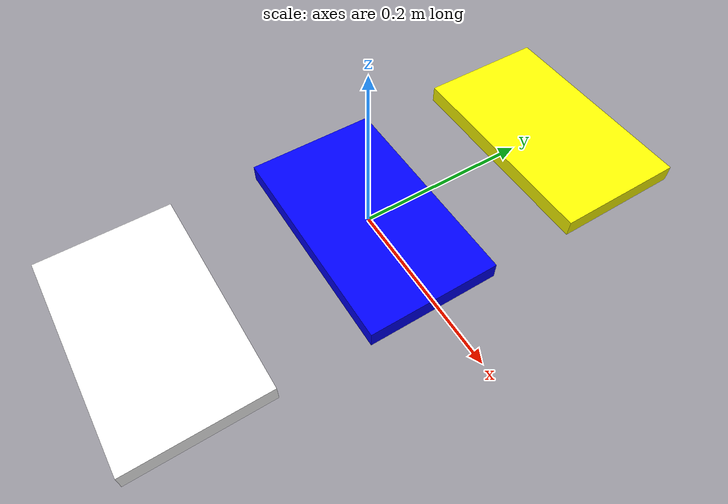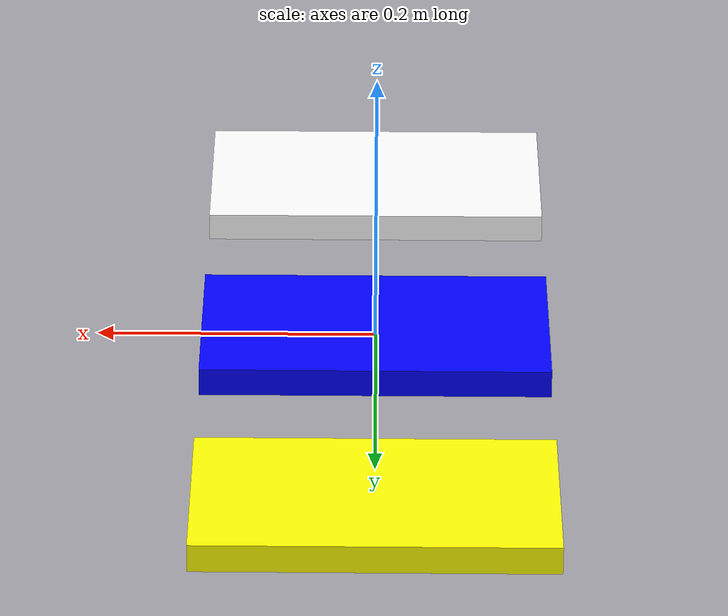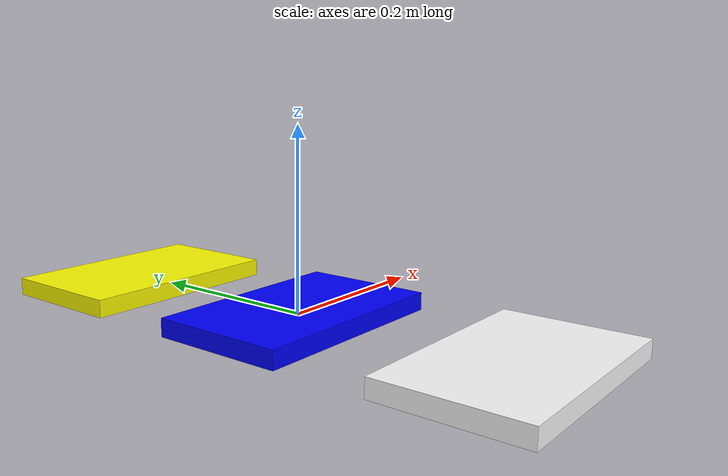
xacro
<?xml version="1.0" ?>
<robot name="triplebot" xmlns:xacro="http://ros.org/wiki/xacro">

  <xacro:property name="width" value="0.15" />
  <xacro:property name="length" value="0.25" />
  <material name="blue">
    <color rgba="0 0 1 1"/>
  </material>
  <material name="yellow">
    <color rgba="1 1 0 1"/>
  </material>
  <material name="white">
    <color rgba="1 1 1 1"/>
  </material>

  <link name="base">
	</link>

  <link name="r1_base">
	</link>

  <link name="r2_base">
	</link>

  <link name="r3_base">
	</link>

  <link name="r1">
    <visual>
      <geometry>
        <box size="${length} ${width} 0.02"/>
      </geometry>
      <material name="blue"/>
    </visual>
    <collision>
      <geometry>
        <box size="${length} ${width} 0.02"/>
      </geometry>
    </collision>
	</link>

  <link name="r2">
    <visual>
      <geometry>
        <box size="${length} ${width} 0.02"/>
      </geometry>
      <material name="yellow"/>
    </visual>
    <collision>
      <geometry>
        <box size="${length} ${width} 0.02"/>
      </geometry>
    </collision>
	</link>

  <link name="r3">
    <visual>
      <geometry>
        <box size="${length} ${width} 0.02"/>
      </geometry>
      <material name="white"/>
    </visual>
    <collision>
      <geometry>
        <box size="${length} ${width} 0.02"/>
      </geometry>
    </collision>
	</link>

  <joint name="r1_world_base_joint" type="floating">
    <parent link="base"/>
    <child link="r1_base"/>
	</joint>

  <joint name="r2_world_base_joint" type="floating">
    <parent link="base"/>
    <child link="r2_base"/>
		<origin xyz="0 0.25 0" rpy="0 0 0"/>
	</joint>

	<joint name="r3_world_base_joint" type="floating">
    <parent link="base"/>
    <child link="r3_base"/>
		<origin xyz="0 -0.25 0" rpy="0 0 0"/>
	</joint>

  <joint name="r1_base_joint" type="planar">
    <parent link="r1_base"/>
    <child link="r1"/>
	</joint>

  <joint name="r2_base_joint" type="planar">
    <parent link="r2_base"/>
    <child link="r2"/>
	</joint>

  <joint name="r3_base_joint" type="planar">
    <parent link="r3_base"/>
    <child link="r3"/>
	</joint>

</robot>
